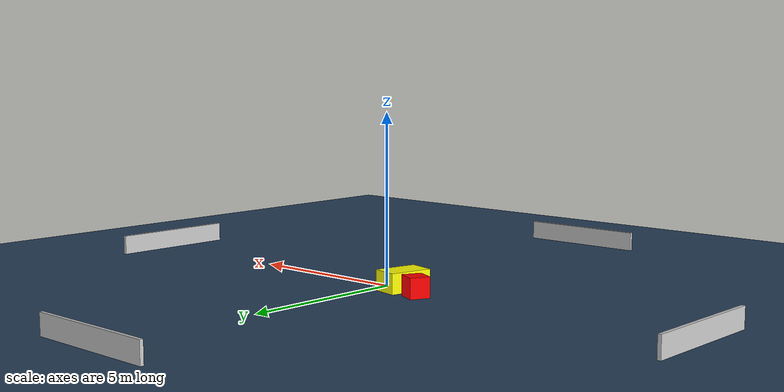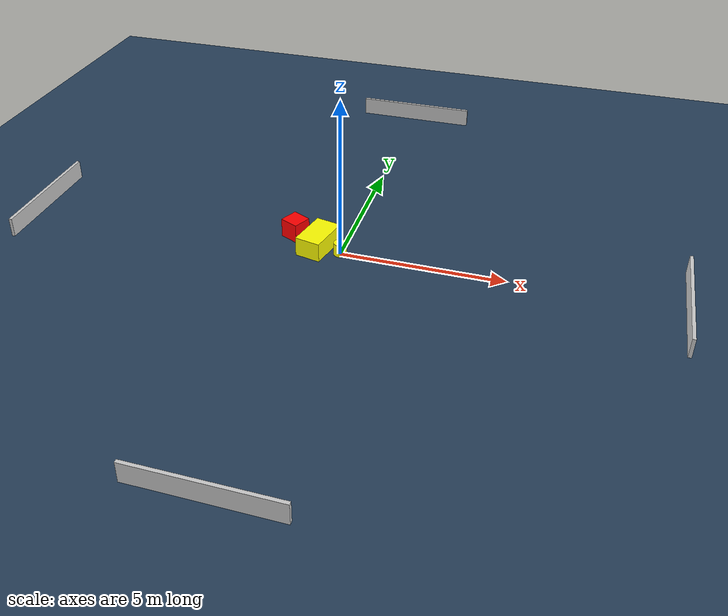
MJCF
<?xml version="1.0" ?>
<mujoco model="generated_environment">
  <option timestep="0.01" integrator="RK4" cone="elliptic"/>
  <default>
    <geom density="1"/>
  </default>
  <asset>
    <texture builtin="gradient" height="3072" name="skybox" rgb1="0.3 0.5 0.7" rgb2="0 0 0" type="skybox" width="512"/>
    <texture builtin="checker" height="300" name="groundplane" rgb1="0.2 0.3 0.4" rgb2="0.1 0.2 0.3" type="2d" width="300"/>
    <material name="groundplane" reflectance="0.2" texrepeat="5 5" texture="groundplane"/>
  </asset>
  <worldbody>
    <light dir="0 0 -1" directional="true" pos="0 0 1.5"/>
    <geom condim="3" friction="0.5 0.005 0.001" material="groundplane" name="floor" pos="0 0 0" size="0 0 0.05" type="plane"/>
    <body name="walls">
      <geom name="wall_1" condim="4" pos="-10.0 0.0 0.3" rgba="0.800000011920929 0.800000011920929 0.800000011920929 1.0" size="0.05 2.0 0.3" type="box"/>
      <geom name="wall_2" condim="4" pos="10.0 0.0 0.3" rgba="0.800000011920929 0.800000011920929 0.800000011920929 1.0" size="0.05 2.0 0.3" type="box"/>
      <geom name="wall_3" condim="4" pos="0.0 -10.0 0.3" rgba="0.800000011920929 0.800000011920929 0.800000011920929 1.0" size="2.0 0.05 0.3" type="box"/>
      <geom name="wall_4" condim="4" pos="0.0 10.0 0.3" rgba="0.800000011920929 0.800000011920929 0.800000011920929 1.0" size="2.0 0.05 0.3" type="box"/>
    </body>
    <body name="robot">
      <joint name="joint_x" type="slide" pos="0 0 0" axis="1 0 0"/>
      <joint name="joint_y" type="slide" pos="0 0 0" axis="0 1 0"/>
      <geom name="robot" type="cylinder" pos="0.0 0.0 0.2" size="0.2 0.2 0.0" mass="5.0" friction="1.0 0.005 0.0001" condim="4" rgba="1.0 1.0 0.0 1.0"/>
    </body>
    <body name="obstacle_1_movable">
      <geom name="obstacle_1_movable" condim="4" pos="-0.7328235435585408 0.12096019259747977 0.3" euler="0 0 167.60875779986895" friction="0.0 0.005 0.001" rgba="1.0 1.0 0.0 1.0" size="0.4000133605503121 0.6549546116578511 0.3" type="box" mass="0.1"/>
      <joint type="free"/>
    </body>
    <body name="obstacle_2_static">
      <geom name="obstacle_2_static" condim="4" pos="-1.625529573259835 0.5935741863315921 0.3" euler="0 0 154.46520083553074" friction="0.0 0.005 0.001" rgba="1.0 0.0 0.0 1.0" size="0.3029988467791691 0.2965610724529497 0.3" type="box"/>
    </body>
  </worldbody>
  <actuator>
    <motor name="actuator_x" joint="joint_x" gear="1" ctrlrange="-1 1"/>
    <motor name="actuator_y" joint="joint_y" gear="1" ctrlrange="-1 1"/>
  </actuator>
</mujoco>
